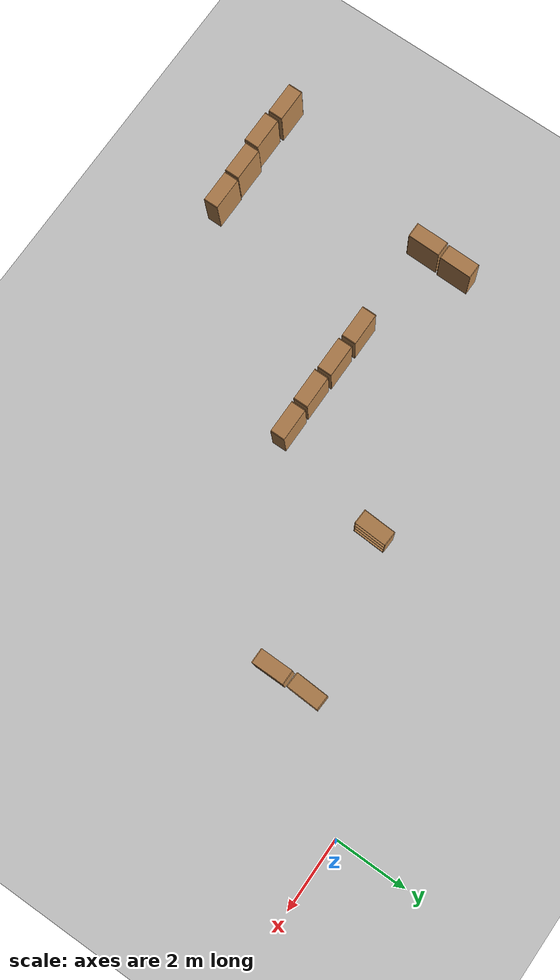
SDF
<sdf version="1.6">
 <world name="default">
  <model name="ground_plane">
   <static>1</static>
   <link name="link">
    <collision name="collision">
     <geometry><plane><normal>0 0 1</normal><size>100 100</size></plane></geometry>
     <surface>
      <contact><collide_bitmask>65535</collide_bitmask></contact>
      <friction><ode><mu>100</mu><mu2>50</mu2></ode></friction>
     </surface>
    </collision>
    <visual name="visual">
     <cast_shadows>0</cast_shadows>
     <geometry><plane><normal>0 0 1</normal><size>100 100</size></plane></geometry>
     <material>
      <script><uri>file://media/materials/scripts/gazebo.material</uri><name>Gazebo/Grey</name></script>
     </material>
    </visual>
   </link>
  </model>
  <model name="bookshelf_clone_0_clone_clone">
   <static>1</static>
   <link name="link">
    <inertial><mass>1</mass></inertial>
    <collision name="back">
     <pose>0 0.005 0.6 0 -0 0</pose>
     <geometry><box><size>0.9 0.01 1.2</size></box></geometry>
    </collision>
    <visual name="visual1">
     <pose>0 0.005 0.6 0 -0 0</pose>
     <geometry><box><size>0.9 0.01 1.2</size></box></geometry>
     <material>
      <script><uri>file://media/materials/scripts/gazebo.material</uri><name>Gazebo/Wood</name></script>
     </material>
    </visual>
    <collision name="left_side">
     <pose>0.45 -0.195 0.6 0 -0 0</pose>
     <geometry><box><size>0.02 0.4 1.2</size></box></geometry>
    </collision>
    <visual name="visual2">
     <pose>0.45 -0.195 0.6 0 -0 0</pose>
     <geometry><box><size>0.02 0.4 1.2</size></box></geometry>
     <material>
      <script><uri>file://media/materials/scripts/gazebo.material</uri><name>Gazebo/Wood</name></script>
     </material>
    </visual>
    <collision name="right_side">
     <pose>-0.45 -0.195 0.6 0 -0 0</pose>
     <geometry><box><size>0.02 0.4 1.2</size></box></geometry>
    </collision>
    <visual name="visual3">
     <pose>-0.45 -0.195 0.6 0 -0 0</pose>
     <geometry><box><size>0.02 0.4 1.2</size></box></geometry>
     <material>
      <script><uri>file://media/materials/scripts/gazebo.material</uri><name>Gazebo/Wood</name></script>
     </material>
    </visual>
    <collision name="bottom">
     <pose>0 -0.195 0.03 0 -0 0</pose>
     <geometry><box><size>0.88 0.4 0.06</size></box></geometry>
    </collision>
    <visual name="visual4">
     <pose>0 -0.195 0.03 0 -0 0</pose>
     <geometry><box><size>0.88 0.4 0.06</size></box></geometry>
     <material>
      <script><uri>file://media/materials/scripts/gazebo.material</uri><name>Gazebo/Wood</name></script>
     </material>
    </visual>
    <collision name="top">
     <pose>0 -0.195 1.19 0 -0 0</pose>
     <geometry><box><size>0.88 0.4 0.02</size></box></geometry>
    </collision>
    <visual name="visual5">
     <pose>0 -0.195 1.19 0 -0 0</pose>
     <geometry><box><size>0.88 0.4 0.02</size></box></geometry>
     <material>
      <script><uri>file://media/materials/scripts/gazebo.material</uri><name>Gazebo/Wood</name></script>
     </material>
    </visual>
    <collision name="low_shelf">
     <pose>0 -0.195 0.43 0 -0 0</pose>
     <geometry><box><size>0.88 0.4 0.02</size></box></geometry>
    </collision>
    <visual name="visual6">
     <pose>0 -0.195 0.43 0 -0 0</pose>
     <geometry><box><size>0.88 0.4 0.02</size></box></geometry>
     <material>
      <script><uri>file://media/materials/scripts/gazebo.material</uri><name>Gazebo/Wood</name></script>
     </material>
    </visual>
    <collision name="high_shelf">
     <pose>0 -0.195 0.8 0 -0 0</pose>
     <geometry><box><size>0.88 0.4 0.02</size></box></geometry>
    </collision>
    <visual name="visual7">
     <pose>0 -0.195 0.8 0 -0 0</pose>
     <geometry><box><size>0.88 0.4 0.02</size></box></geometry>
     <material>
      <script><uri>file://media/materials/scripts/gazebo.material</uri><name>Gazebo/Wood</name></script>
     </material>
    </visual>
   </link>
   <pose>-13.1951 -6.44439 0 0 0 -1.58271</pose>
  </model>
  <model name="bookshelf_clone_0_clone_clone_0">
   <static>1</static>
   <link name="link">
    <inertial><mass>1</mass></inertial>
    <collision name="back">
     <pose>0 0.005 0.6 0 -0 0</pose>
     <geometry><box><size>0.9 0.01 1.2</size></box></geometry>
    </collision>
    <visual name="visual1">
     <pose>0 0.005 0.6 0 -0 0</pose>
     <geometry><box><size>0.9 0.01 1.2</size></box></geometry>
     <material>
      <script><uri>file://media/materials/scripts/gazebo.material</uri><name>Gazebo/Wood</name></script>
     </material>
    </visual>
    <collision name="left_side">
     <pose>0.45 -0.195 0.6 0 -0 0</pose>
     <geometry><box><size>0.02 0.4 1.2</size></box></geometry>
    </collision>
    <visual name="visual2">
     <pose>0.45 -0.195 0.6 0 -0 0</pose>
     <geometry><box><size>0.02 0.4 1.2</size></box></geometry>
     <material>
      <script><uri>file://media/materials/scripts/gazebo.material</uri><name>Gazebo/Wood</name></script>
     </material>
    </visual>
    <collision name="right_side">
     <pose>-0.45 -0.195 0.6 0 -0 0</pose>
     <geometry><box><size>0.02 0.4 1.2</size></box></geometry>
    </collision>
    <visual name="visual3">
     <pose>-0.45 -0.195 0.6 0 -0 0</pose>
     <geometry><box><size>0.02 0.4 1.2</size></box></geometry>
     <material>
      <script><uri>file://media/materials/scripts/gazebo.material</uri><name>Gazebo/Wood</name></script>
     </material>
    </visual>
    <collision name="bottom">
     <pose>0 -0.195 0.03 0 -0 0</pose>
     <geometry><box><size>0.88 0.4 0.06</size></box></geometry>
    </collision>
    <visual name="visual4">
     <pose>0 -0.195 0.03 0 -0 0</pose>
     <geometry><box><size>0.88 0.4 0.06</size></box></geometry>
     <material>
      <script><uri>file://media/materials/scripts/gazebo.material</uri><name>Gazebo/Wood</name></script>
     </material>
    </visual>
    <collision name="top">
     <pose>0 -0.195 1.19 0 -0 0</pose>
     <geometry><box><size>0.88 0.4 0.02</size></box></geometry>
    </collision>
    <visual name="visual5">
     <pose>0 -0.195 1.19 0 -0 0</pose>
     <geometry><box><size>0.88 0.4 0.02</size></box></geometry>
     <material>
      <script><uri>file://media/materials/scripts/gazebo.material</uri><name>Gazebo/Wood</name></script>
     </material>
    </visual>
    <collision name="low_shelf">
     <pose>0 -0.195 0.43 0 -0 0</pose>
     <geometry><box><size>0.88 0.4 0.02</size></box></geometry>
    </collision>
    <visual name="visual6">
     <pose>0 -0.195 0.43 0 -0 0</pose>
     <geometry><box><size>0.88 0.4 0.02</size></box></geometry>
     <material>
      <script><uri>file://media/materials/scripts/gazebo.material</uri><name>Gazebo/Wood</name></script>
     </material>
    </visual>
    <collision name="high_shelf">
     <pose>0 -0.195 0.8 0 -0 0</pose>
     <geometry><box><size>0.88 0.4 0.02</size></box></geometry>
    </collision>
    <visual name="visual7">
     <pose>0 -0.195 0.8 0 -0 0</pose>
     <geometry><box><size>0.88 0.4 0.02</size></box></geometry>
     <material>
      <script><uri>file://media/materials/scripts/gazebo.material</uri><name>Gazebo/Wood</name></script>
     </material>
    </visual>
   </link>
   <pose>-13.1543 -5.46982 0 0 0 -1.58271</pose>
  </model>
  <model name="bookshelf_clone_clone_clone_0_clone_0_clone">
   <static>1</static>
   <link name="link">
    <inertial><mass>1</mass></inertial>
    <collision name="back">
     <pose>0 0.005 0.6 0 -0 0</pose>
     <geometry><box><size>0.9 0.01 1.2</size></box></geometry>
    </collision>
    <visual name="visual1">
     <pose>0 0.005 0.6 0 -0 0</pose>
     <geometry><box><size>0.9 0.01 1.2</size></box></geometry>
     <material>
      <script><uri>file://media/materials/scripts/gazebo.material</uri><name>Gazebo/Wood</name></script>
     </material>
    </visual>
    <collision name="left_side">
     <pose>0.45 -0.195 0.6 0 -0 0</pose>
     <geometry><box><size>0.02 0.4 1.2</size></box></geometry>
    </collision>
    <visual name="visual2">
     <pose>0.45 -0.195 0.6 0 -0 0</pose>
     <geometry><box><size>0.02 0.4 1.2</size></box></geometry>
     <material>
      <script><uri>file://media/materials/scripts/gazebo.material</uri><name>Gazebo/Wood</name></script>
     </material>
    </visual>
    <collision name="right_side">
     <pose>-0.45 -0.195 0.6 0 -0 0</pose>
     <geometry><box><size>0.02 0.4 1.2</size></box></geometry>
    </collision>
    <visual name="visual3">
     <pose>-0.45 -0.195 0.6 0 -0 0</pose>
     <geometry><box><size>0.02 0.4 1.2</size></box></geometry>
     <material>
      <script><uri>file://media/materials/scripts/gazebo.material</uri><name>Gazebo/Wood</name></script>
     </material>
    </visual>
    <collision name="bottom">
     <pose>0 -0.195 0.03 0 -0 0</pose>
     <geometry><box><size>0.88 0.4 0.06</size></box></geometry>
    </collision>
    <visual name="visual4">
     <pose>0 -0.195 0.03 0 -0 0</pose>
     <geometry><box><size>0.88 0.4 0.06</size></box></geometry>
     <material>
      <script><uri>file://media/materials/scripts/gazebo.material</uri><name>Gazebo/Wood</name></script>
     </material>
    </visual>
    <collision name="top">
     <pose>0 -0.195 1.19 0 -0 0</pose>
     <geometry><box><size>0.88 0.4 0.02</size></box></geometry>
    </collision>
    <visual name="visual5">
     <pose>0 -0.195 1.19 0 -0 0</pose>
     <geometry><box><size>0.88 0.4 0.02</size></box></geometry>
     <material>
      <script><uri>file://media/materials/scripts/gazebo.material</uri><name>Gazebo/Wood</name></script>
     </material>
    </visual>
    <collision name="low_shelf">
     <pose>0 -0.195 0.43 0 -0 0</pose>
     <geometry><box><size>0.88 0.4 0.02</size></box></geometry>
    </collision>
    <visual name="visual6">
     <pose>0 -0.195 0.43 0 -0 0</pose>
     <geometry><box><size>0.88 0.4 0.02</size></box></geometry>
     <material>
      <script><uri>file://media/materials/scripts/gazebo.material</uri><name>Gazebo/Wood</name></script>
     </material>
    </visual>
    <collision name="high_shelf">
     <pose>0 -0.195 0.8 0 -0 0</pose>
     <geometry><box><size>0.88 0.4 0.02</size></box></geometry>
    </collision>
    <visual name="visual7">
     <pose>0 -0.195 0.8 0 -0 0</pose>
     <geometry><box><size>0.88 0.4 0.02</size></box></geometry>
     <material>
      <script><uri>file://media/materials/scripts/gazebo.material</uri><name>Gazebo/Wood</name></script>
     </material>
    </visual>
   </link>
   <pose>-10.533 -6.39963 0 0 -0 0</pose>
  </model>
  <model name="bookshelf_clone_clone_clone_0_clone_0_clone_0">
   <static>1</static>
   <link name="link">
    <inertial><mass>1</mass></inertial>
    <collision name="back">
     <pose>0 0.005 0.6 0 -0 0</pose>
     <geometry><box><size>0.9 0.01 1.2</size></box></geometry>
    </collision>
    <visual name="visual1">
     <pose>0 0.005 0.6 0 -0 0</pose>
     <geometry><box><size>0.9 0.01 1.2</size></box></geometry>
     <material>
      <script><uri>file://media/materials/scripts/gazebo.material</uri><name>Gazebo/Wood</name></script>
     </material>
    </visual>
    <collision name="left_side">
     <pose>0.45 -0.195 0.6 0 -0 0</pose>
     <geometry><box><size>0.02 0.4 1.2</size></box></geometry>
    </collision>
    <visual name="visual2">
     <pose>0.45 -0.195 0.6 0 -0 0</pose>
     <geometry><box><size>0.02 0.4 1.2</size></box></geometry>
     <material>
      <script><uri>file://media/materials/scripts/gazebo.material</uri><name>Gazebo/Wood</name></script>
     </material>
    </visual>
    <collision name="right_side">
     <pose>-0.45 -0.195 0.6 0 -0 0</pose>
     <geometry><box><size>0.02 0.4 1.2</size></box></geometry>
    </collision>
    <visual name="visual3">
     <pose>-0.45 -0.195 0.6 0 -0 0</pose>
     <geometry><box><size>0.02 0.4 1.2</size></box></geometry>
     <material>
      <script><uri>file://media/materials/scripts/gazebo.material</uri><name>Gazebo/Wood</name></script>
     </material>
    </visual>
    <collision name="bottom">
     <pose>0 -0.195 0.03 0 -0 0</pose>
     <geometry><box><size>0.88 0.4 0.06</size></box></geometry>
    </collision>
    <visual name="visual4">
     <pose>0 -0.195 0.03 0 -0 0</pose>
     <geometry><box><size>0.88 0.4 0.06</size></box></geometry>
     <material>
      <script><uri>file://media/materials/scripts/gazebo.material</uri><name>Gazebo/Wood</name></script>
     </material>
    </visual>
    <collision name="top">
     <pose>0 -0.195 1.19 0 -0 0</pose>
     <geometry><box><size>0.88 0.4 0.02</size></box></geometry>
    </collision>
    <visual name="visual5">
     <pose>0 -0.195 1.19 0 -0 0</pose>
     <geometry><box><size>0.88 0.4 0.02</size></box></geometry>
     <material>
      <script><uri>file://media/materials/scripts/gazebo.material</uri><name>Gazebo/Wood</name></script>
     </material>
    </visual>
    <collision name="low_shelf">
     <pose>0 -0.195 0.43 0 -0 0</pose>
     <geometry><box><size>0.88 0.4 0.02</size></box></geometry>
    </collision>
    <visual name="visual6">
     <pose>0 -0.195 0.43 0 -0 0</pose>
     <geometry><box><size>0.88 0.4 0.02</size></box></geometry>
     <material>
      <script><uri>file://media/materials/scripts/gazebo.material</uri><name>Gazebo/Wood</name></script>
     </material>
    </visual>
    <collision name="high_shelf">
     <pose>0 -0.195 0.8 0 -0 0</pose>
     <geometry><box><size>0.88 0.4 0.02</size></box></geometry>
    </collision>
    <visual name="visual7">
     <pose>0 -0.195 0.8 0 -0 0</pose>
     <geometry><box><size>0.88 0.4 0.02</size></box></geometry>
     <material>
      <script><uri>file://media/materials/scripts/gazebo.material</uri><name>Gazebo/Wood</name></script>
     </material>
    </visual>
   </link>
   <pose>-9.52322 -6.42701 0 0 -0 0</pose>
  </model>
  <model name="bookshelf_clone_clone_clone_0_clone_0_clone_1">
   <static>1</static>
   <link name="link">
    <inertial><mass>1</mass></inertial>
    <collision name="back">
     <pose>0 0.005 0.6 0 -0 0</pose>
     <geometry><box><size>0.9 0.01 1.2</size></box></geometry>
    </collision>
    <visual name="visual1">
     <pose>0 0.005 0.6 0 -0 0</pose>
     <geometry><box><size>0.9 0.01 1.2</size></box></geometry>
     <material>
      <script><uri>file://media/materials/scripts/gazebo.material</uri><name>Gazebo/Wood</name></script>
     </material>
    </visual>
    <collision name="left_side">
     <pose>0.45 -0.195 0.6 0 -0 0</pose>
     <geometry><box><size>0.02 0.4 1.2</size></box></geometry>
    </collision>
    <visual name="visual2">
     <pose>0.45 -0.195 0.6 0 -0 0</pose>
     <geometry><box><size>0.02 0.4 1.2</size></box></geometry>
     <material>
      <script><uri>file://media/materials/scripts/gazebo.material</uri><name>Gazebo/Wood</name></script>
     </material>
    </visual>
    <collision name="right_side">
     <pose>-0.45 -0.195 0.6 0 -0 0</pose>
     <geometry><box><size>0.02 0.4 1.2</size></box></geometry>
    </collision>
    <visual name="visual3">
     <pose>-0.45 -0.195 0.6 0 -0 0</pose>
     <geometry><box><size>0.02 0.4 1.2</size></box></geometry>
     <material>
      <script><uri>file://media/materials/scripts/gazebo.material</uri><name>Gazebo/Wood</name></script>
     </material>
    </visual>
    <collision name="bottom">
     <pose>0 -0.195 0.03 0 -0 0</pose>
     <geometry><box><size>0.88 0.4 0.06</size></box></geometry>
    </collision>
    <visual name="visual4">
     <pose>0 -0.195 0.03 0 -0 0</pose>
     <geometry><box><size>0.88 0.4 0.06</size></box></geometry>
     <material>
      <script><uri>file://media/materials/scripts/gazebo.material</uri><name>Gazebo/Wood</name></script>
     </material>
    </visual>
    <collision name="top">
     <pose>0 -0.195 1.19 0 -0 0</pose>
     <geometry><box><size>0.88 0.4 0.02</size></box></geometry>
    </collision>
    <visual name="visual5">
     <pose>0 -0.195 1.19 0 -0 0</pose>
     <geometry><box><size>0.88 0.4 0.02</size></box></geometry>
     <material>
      <script><uri>file://media/materials/scripts/gazebo.material</uri><name>Gazebo/Wood</name></script>
     </material>
    </visual>
    <collision name="low_shelf">
     <pose>0 -0.195 0.43 0 -0 0</pose>
     <geometry><box><size>0.88 0.4 0.02</size></box></geometry>
    </collision>
    <visual name="visual6">
     <pose>0 -0.195 0.43 0 -0 0</pose>
     <geometry><box><size>0.88 0.4 0.02</size></box></geometry>
     <material>
      <script><uri>file://media/materials/scripts/gazebo.material</uri><name>Gazebo/Wood</name></script>
     </material>
    </visual>
    <collision name="high_shelf">
     <pose>0 -0.195 0.8 0 -0 0</pose>
     <geometry><box><size>0.88 0.4 0.02</size></box></geometry>
    </collision>
    <visual name="visual7">
     <pose>0 -0.195 0.8 0 -0 0</pose>
     <geometry><box><size>0.88 0.4 0.02</size></box></geometry>
     <material>
      <script><uri>file://media/materials/scripts/gazebo.material</uri><name>Gazebo/Wood</name></script>
     </material>
    </visual>
   </link>
   <pose>-8.53102 -6.45354 0 0 -0 0</pose>
  </model>
  <model name="bookshelf_clone_clone_clone_0_clone_0_clone_2">
   <static>1</static>
   <link name="link">
    <inertial><mass>1</mass></inertial>
    <collision name="back">
     <pose>0 0.005 0.6 0 -0 0</pose>
     <geometry><box><size>0.9 0.01 1.2</size></box></geometry>
    </collision>
    <visual name="visual1">
     <pose>0 0.005 0.6 0 -0 0</pose>
     <geometry><box><size>0.9 0.01 1.2</size></box></geometry>
     <material>
      <script><uri>file://media/materials/scripts/gazebo.material</uri><name>Gazebo/Wood</name></script>
     </material>
    </visual>
    <collision name="left_side">
     <pose>0.45 -0.195 0.6 0 -0 0</pose>
     <geometry><box><size>0.02 0.4 1.2</size></box></geometry>
    </collision>
    <visual name="visual2">
     <pose>0.45 -0.195 0.6 0 -0 0</pose>
     <geometry><box><size>0.02 0.4 1.2</size></box></geometry>
     <material>
      <script><uri>file://media/materials/scripts/gazebo.material</uri><name>Gazebo/Wood</name></script>
     </material>
    </visual>
    <collision name="right_side">
     <pose>-0.45 -0.195 0.6 0 -0 0</pose>
     <geometry><box><size>0.02 0.4 1.2</size></box></geometry>
    </collision>
    <visual name="visual3">
     <pose>-0.45 -0.195 0.6 0 -0 0</pose>
     <geometry><box><size>0.02 0.4 1.2</size></box></geometry>
     <material>
      <script><uri>file://media/materials/scripts/gazebo.material</uri><name>Gazebo/Wood</name></script>
     </material>
    </visual>
    <collision name="bottom">
     <pose>0 -0.195 0.03 0 -0 0</pose>
     <geometry><box><size>0.88 0.4 0.06</size></box></geometry>
    </collision>
    <visual name="visual4">
     <pose>0 -0.195 0.03 0 -0 0</pose>
     <geometry><box><size>0.88 0.4 0.06</size></box></geometry>
     <material>
      <script><uri>file://media/materials/scripts/gazebo.material</uri><name>Gazebo/Wood</name></script>
     </material>
    </visual>
    <collision name="top">
     <pose>0 -0.195 1.19 0 -0 0</pose>
     <geometry><box><size>0.88 0.4 0.02</size></box></geometry>
    </collision>
    <visual name="visual5">
     <pose>0 -0.195 1.19 0 -0 0</pose>
     <geometry><box><size>0.88 0.4 0.02</size></box></geometry>
     <material>
      <script><uri>file://media/materials/scripts/gazebo.material</uri><name>Gazebo/Wood</name></script>
     </material>
    </visual>
    <collision name="low_shelf">
     <pose>0 -0.195 0.43 0 -0 0</pose>
     <geometry><box><size>0.88 0.4 0.02</size></box></geometry>
    </collision>
    <visual name="visual6">
     <pose>0 -0.195 0.43 0 -0 0</pose>
     <geometry><box><size>0.88 0.4 0.02</size></box></geometry>
     <material>
      <script><uri>file://media/materials/scripts/gazebo.material</uri><name>Gazebo/Wood</name></script>
     </material>
    </visual>
    <collision name="high_shelf">
     <pose>0 -0.195 0.8 0 -0 0</pose>
     <geometry><box><size>0.88 0.4 0.02</size></box></geometry>
    </collision>
    <visual name="visual7">
     <pose>0 -0.195 0.8 0 -0 0</pose>
     <geometry><box><size>0.88 0.4 0.02</size></box></geometry>
     <material>
      <script><uri>file://media/materials/scripts/gazebo.material</uri><name>Gazebo/Wood</name></script>
     </material>
    </visual>
   </link>
   <pose>-7.53666 -6.44553 0 0 -0 0</pose>
  </model>
  <model name="bookshelf_clone_0_clone_clone_4_clone">
   <static>1</static>
   <link name="link">
    <inertial><mass>1</mass></inertial>
    <collision name="back">
     <pose>0 0.005 0.6 0 -0 0</pose>
     <geometry><box><size>0.9 0.01 1.2</size></box></geometry>
    </collision>
    <visual name="visual1">
     <pose>0 0.005 0.6 0 -0 0</pose>
     <geometry><box><size>0.9 0.01 1.2</size></box></geometry>
     <material>
      <script><uri>file://media/materials/scripts/gazebo.material</uri><name>Gazebo/Wood</name></script>
     </material>
    </visual>
    <collision name="left_side">
     <pose>0.45 -0.195 0.6 0 -0 0</pose>
     <geometry><box><size>0.02 0.4 1.2</size></box></geometry>
    </collision>
    <visual name="visual2">
     <pose>0.45 -0.195 0.6 0 -0 0</pose>
     <geometry><box><size>0.02 0.4 1.2</size></box></geometry>
     <material>
      <script><uri>file://media/materials/scripts/gazebo.material</uri><name>Gazebo/Wood</name></script>
     </material>
    </visual>
    <collision name="right_side">
     <pose>-0.45 -0.195 0.6 0 -0 0</pose>
     <geometry><box><size>0.02 0.4 1.2</size></box></geometry>
    </collision>
    <visual name="visual3">
     <pose>-0.45 -0.195 0.6 0 -0 0</pose>
     <geometry><box><size>0.02 0.4 1.2</size></box></geometry>
     <material>
      <script><uri>file://media/materials/scripts/gazebo.material</uri><name>Gazebo/Wood</name></script>
     </material>
    </visual>
    <collision name="bottom">
     <pose>0 -0.195 0.03 0 -0 0</pose>
     <geometry><box><size>0.88 0.4 0.06</size></box></geometry>
    </collision>
    <visual name="visual4">
     <pose>0 -0.195 0.03 0 -0 0</pose>
     <geometry><box><size>0.88 0.4 0.06</size></box></geometry>
     <material>
      <script><uri>file://media/materials/scripts/gazebo.material</uri><name>Gazebo/Wood</name></script>
     </material>
    </visual>
    <collision name="top">
     <pose>0 -0.195 1.19 0 -0 0</pose>
     <geometry><box><size>0.88 0.4 0.02</size></box></geometry>
    </collision>
    <visual name="visual5">
     <pose>0 -0.195 1.19 0 -0 0</pose>
     <geometry><box><size>0.88 0.4 0.02</size></box></geometry>
     <material>
      <script><uri>file://media/materials/scripts/gazebo.material</uri><name>Gazebo/Wood</name></script>
     </material>
    </visual>
    <collision name="low_shelf">
     <pose>0 -0.195 0.43 0 -0 0</pose>
     <geometry><box><size>0.88 0.4 0.02</size></box></geometry>
    </collision>
    <visual name="visual6">
     <pose>0 -0.195 0.43 0 -0 0</pose>
     <geometry><box><size>0.88 0.4 0.02</size></box></geometry>
     <material>
      <script><uri>file://media/materials/scripts/gazebo.material</uri><name>Gazebo/Wood</name></script>
     </material>
    </visual>
    <collision name="high_shelf">
     <pose>0 -0.195 0.8 0 -0 0</pose>
     <geometry><box><size>0.88 0.4 0.02</size></box></geometry>
    </collision>
    <visual name="visual7">
     <pose>0 -0.195 0.8 0 -0 0</pose>
     <geometry><box><size>0.88 0.4 0.02</size></box></geometry>
     <material>
      <script><uri>file://media/materials/scripts/gazebo.material</uri><name>Gazebo/Wood</name></script>
     </material>
    </visual>
   </link>
   <pose>-2.63698 -2.51216 0 -0.000638 0.016748 1.52081</pose>
  </model>
  <model name="bookshelf_clone_0_clone_clone_3_clone">
   <static>1</static>
   <link name="link">
    <inertial><mass>1</mass></inertial>
    <collision name="back">
     <pose>0 0.005 0.6 0 -0 0</pose>
     <geometry><box><size>0.9 0.01 1.2</size></box></geometry>
    </collision>
    <visual name="visual1">
     <pose>0 0.005 0.6 0 -0 0</pose>
     <geometry><box><size>0.9 0.01 1.2</size></box></geometry>
     <material>
      <script><uri>file://media/materials/scripts/gazebo.material</uri><name>Gazebo/Wood</name></script>
     </material>
    </visual>
    <collision name="left_side">
     <pose>0.45 -0.195 0.6 0 -0 0</pose>
     <geometry><box><size>0.02 0.4 1.2</size></box></geometry>
    </collision>
    <visual name="visual2">
     <pose>0.45 -0.195 0.6 0 -0 0</pose>
     <geometry><box><size>0.02 0.4 1.2</size></box></geometry>
     <material>
      <script><uri>file://media/materials/scripts/gazebo.material</uri><name>Gazebo/Wood</name></script>
     </material>
    </visual>
    <collision name="right_side">
     <pose>-0.45 -0.195 0.6 0 -0 0</pose>
     <geometry><box><size>0.02 0.4 1.2</size></box></geometry>
    </collision>
    <visual name="visual3">
     <pose>-0.45 -0.195 0.6 0 -0 0</pose>
     <geometry><box><size>0.02 0.4 1.2</size></box></geometry>
     <material>
      <script><uri>file://media/materials/scripts/gazebo.material</uri><name>Gazebo/Wood</name></script>
     </material>
    </visual>
    <collision name="bottom">
     <pose>0 -0.195 0.03 0 -0 0</pose>
     <geometry><box><size>0.88 0.4 0.06</size></box></geometry>
    </collision>
    <visual name="visual4">
     <pose>0 -0.195 0.03 0 -0 0</pose>
     <geometry><box><size>0.88 0.4 0.06</size></box></geometry>
     <material>
      <script><uri>file://media/materials/scripts/gazebo.material</uri><name>Gazebo/Wood</name></script>
     </material>
    </visual>
    <collision name="top">
     <pose>0 -0.195 1.19 0 -0 0</pose>
     <geometry><box><size>0.88 0.4 0.02</size></box></geometry>
    </collision>
    <visual name="visual5">
     <pose>0 -0.195 1.19 0 -0 0</pose>
     <geometry><box><size>0.88 0.4 0.02</size></box></geometry>
     <material>
      <script><uri>file://media/materials/scripts/gazebo.material</uri><name>Gazebo/Wood</name></script>
     </material>
    </visual>
    <collision name="low_shelf">
     <pose>0 -0.195 0.43 0 -0 0</pose>
     <geometry><box><size>0.88 0.4 0.02</size></box></geometry>
    </collision>
    <visual name="visual6">
     <pose>0 -0.195 0.43 0 -0 0</pose>
     <geometry><box><size>0.88 0.4 0.02</size></box></geometry>
     <material>
      <script><uri>file://media/materials/scripts/gazebo.material</uri><name>Gazebo/Wood</name></script>
     </material>
    </visual>
    <collision name="high_shelf">
     <pose>0 -0.195 0.8 0 -0 0</pose>
     <geometry><box><size>0.88 0.4 0.02</size></box></geometry>
    </collision>
    <visual name="visual7">
     <pose>0 -0.195 0.8 0 -0 0</pose>
     <geometry><box><size>0.88 0.4 0.02</size></box></geometry>
     <material>
      <script><uri>file://media/materials/scripts/gazebo.material</uri><name>Gazebo/Wood</name></script>
     </material>
    </visual>
   </link>
   <pose>-2.24715 -3.51263 0 0 0 -1.58271</pose>
  </model>
  <model name="bookshelf_clone_clone_clone_0_clone_0_clone_clone">
   <static>1</static>
   <link name="link">
    <inertial><mass>1</mass></inertial>
    <collision name="back">
     <pose>0 0.005 0.6 0 -0 0</pose>
     <geometry><box><size>0.9 0.01 1.2</size></box></geometry>
    </collision>
    <visual name="visual1">
     <pose>0 0.005 0.6 0 -0 0</pose>
     <geometry><box><size>0.9 0.01 1.2</size></box></geometry>
     <material>
      <script><uri>file://media/materials/scripts/gazebo.material</uri><name>Gazebo/Wood</name></script>
     </material>
    </visual>
    <collision name="left_side">
     <pose>0.45 -0.195 0.6 0 -0 0</pose>
     <geometry><box><size>0.02 0.4 1.2</size></box></geometry>
    </collision>
    <visual name="visual2">
     <pose>0.45 -0.195 0.6 0 -0 0</pose>
     <geometry><box><size>0.02 0.4 1.2</size></box></geometry>
     <material>
      <script><uri>file://media/materials/scripts/gazebo.material</uri><name>Gazebo/Wood</name></script>
     </material>
    </visual>
    <collision name="right_side">
     <pose>-0.45 -0.195 0.6 0 -0 0</pose>
     <geometry><box><size>0.02 0.4 1.2</size></box></geometry>
    </collision>
    <visual name="visual3">
     <pose>-0.45 -0.195 0.6 0 -0 0</pose>
     <geometry><box><size>0.02 0.4 1.2</size></box></geometry>
     <material>
      <script><uri>file://media/materials/scripts/gazebo.material</uri><name>Gazebo/Wood</name></script>
     </material>
    </visual>
    <collision name="bottom">
     <pose>0 -0.195 0.03 0 -0 0</pose>
     <geometry><box><size>0.88 0.4 0.06</size></box></geometry>
    </collision>
    <visual name="visual4">
     <pose>0 -0.195 0.03 0 -0 0</pose>
     <geometry><box><size>0.88 0.4 0.06</size></box></geometry>
     <material>
      <script><uri>file://media/materials/scripts/gazebo.material</uri><name>Gazebo/Wood</name></script>
     </material>
    </visual>
    <collision name="top">
     <pose>0 -0.195 1.19 0 -0 0</pose>
     <geometry><box><size>0.88 0.4 0.02</size></box></geometry>
    </collision>
    <visual name="visual5">
     <pose>0 -0.195 1.19 0 -0 0</pose>
     <geometry><box><size>0.88 0.4 0.02</size></box></geometry>
     <material>
      <script><uri>file://media/materials/scripts/gazebo.material</uri><name>Gazebo/Wood</name></script>
     </material>
    </visual>
    <collision name="low_shelf">
     <pose>0 -0.195 0.43 0 -0 0</pose>
     <geometry><box><size>0.88 0.4 0.02</size></box></geometry>
    </collision>
    <visual name="visual6">
     <pose>0 -0.195 0.43 0 -0 0</pose>
     <geometry><box><size>0.88 0.4 0.02</size></box></geometry>
     <material>
      <script><uri>file://media/materials/scripts/gazebo.material</uri><name>Gazebo/Wood</name></script>
     </material>
    </visual>
    <collision name="high_shelf">
     <pose>0 -0.195 0.8 0 -0 0</pose>
     <geometry><box><size>0.88 0.4 0.02</size></box></geometry>
    </collision>
    <visual name="visual7">
     <pose>0 -0.195 0.8 0 -0 0</pose>
     <geometry><box><size>0.88 0.4 0.02</size></box></geometry>
     <material>
      <script><uri>file://media/materials/scripts/gazebo.material</uri><name>Gazebo/Wood</name></script>
     </material>
    </visual>
   </link>
   <pose>-14.4175 -11.3677 0 0 -0 0</pose>
  </model>
  <model name="bookshelf_clone_clone_clone_0_clone_0_clone_clone_0">
   <static>1</static>
   <link name="link">
    <inertial><mass>1</mass></inertial>
    <collision name="back">
     <pose>0 0.005 0.6 0 -0 0</pose>
     <geometry><box><size>0.9 0.01 1.2</size></box></geometry>
    </collision>
    <visual name="visual1">
     <pose>0 0.005 0.6 0 -0 0</pose>
     <geometry><box><size>0.9 0.01 1.2</size></box></geometry>
     <material>
      <script><uri>file://media/materials/scripts/gazebo.material</uri><name>Gazebo/Wood</name></script>
     </material>
    </visual>
    <collision name="left_side">
     <pose>0.45 -0.195 0.6 0 -0 0</pose>
     <geometry><box><size>0.02 0.4 1.2</size></box></geometry>
    </collision>
    <visual name="visual2">
     <pose>0.45 -0.195 0.6 0 -0 0</pose>
     <geometry><box><size>0.02 0.4 1.2</size></box></geometry>
     <material>
      <script><uri>file://media/materials/scripts/gazebo.material</uri><name>Gazebo/Wood</name></script>
     </material>
    </visual>
    <collision name="right_side">
     <pose>-0.45 -0.195 0.6 0 -0 0</pose>
     <geometry><box><size>0.02 0.4 1.2</size></box></geometry>
    </collision>
    <visual name="visual3">
     <pose>-0.45 -0.195 0.6 0 -0 0</pose>
     <geometry><box><size>0.02 0.4 1.2</size></box></geometry>
     <material>
      <script><uri>file://media/materials/scripts/gazebo.material</uri><name>Gazebo/Wood</name></script>
     </material>
    </visual>
    <collision name="bottom">
     <pose>0 -0.195 0.03 0 -0 0</pose>
     <geometry><box><size>0.88 0.4 0.06</size></box></geometry>
    </collision>
    <visual name="visual4">
     <pose>0 -0.195 0.03 0 -0 0</pose>
     <geometry><box><size>0.88 0.4 0.06</size></box></geometry>
     <material>
      <script><uri>file://media/materials/scripts/gazebo.material</uri><name>Gazebo/Wood</name></script>
     </material>
    </visual>
    <collision name="top">
     <pose>0 -0.195 1.19 0 -0 0</pose>
     <geometry><box><size>0.88 0.4 0.02</size></box></geometry>
    </collision>
    <visual name="visual5">
     <pose>0 -0.195 1.19 0 -0 0</pose>
     <geometry><box><size>0.88 0.4 0.02</size></box></geometry>
     <material>
      <script><uri>file://media/materials/scripts/gazebo.material</uri><name>Gazebo/Wood</name></script>
     </material>
    </visual>
    <collision name="low_shelf">
     <pose>0 -0.195 0.43 0 -0 0</pose>
     <geometry><box><size>0.88 0.4 0.02</size></box></geometry>
    </collision>
    <visual name="visual6">
     <pose>0 -0.195 0.43 0 -0 0</pose>
     <geometry><box><size>0.88 0.4 0.02</size></box></geometry>
     <material>
      <script><uri>file://media/materials/scripts/gazebo.material</uri><name>Gazebo/Wood</name></script>
     </material>
    </visual>
    <collision name="high_shelf">
     <pose>0 -0.195 0.8 0 -0 0</pose>
     <geometry><box><size>0.88 0.4 0.02</size></box></geometry>
    </collision>
    <visual name="visual7">
     <pose>0 -0.195 0.8 0 -0 0</pose>
     <geometry><box><size>0.88 0.4 0.02</size></box></geometry>
     <material>
      <script><uri>file://media/materials/scripts/gazebo.material</uri><name>Gazebo/Wood</name></script>
     </material>
    </visual>
   </link>
   <pose>-13.4215 -11.415 0 0 -0 0</pose>
  </model>
  <model name="bookshelf_clone_clone_clone_0_clone_0_clone_clone_1">
   <static>1</static>
   <link name="link">
    <inertial><mass>1</mass></inertial>
    <collision name="back">
     <pose>0 0.005 0.6 0 -0 0</pose>
     <geometry><box><size>0.9 0.01 1.2</size></box></geometry>
    </collision>
    <visual name="visual1">
     <pose>0 0.005 0.6 0 -0 0</pose>
     <geometry><box><size>0.9 0.01 1.2</size></box></geometry>
     <material>
      <script><uri>file://media/materials/scripts/gazebo.material</uri><name>Gazebo/Wood</name></script>
     </material>
    </visual>
    <collision name="left_side">
     <pose>0.45 -0.195 0.6 0 -0 0</pose>
     <geometry><box><size>0.02 0.4 1.2</size></box></geometry>
    </collision>
    <visual name="visual2">
     <pose>0.45 -0.195 0.6 0 -0 0</pose>
     <geometry><box><size>0.02 0.4 1.2</size></box></geometry>
     <material>
      <script><uri>file://media/materials/scripts/gazebo.material</uri><name>Gazebo/Wood</name></script>
     </material>
    </visual>
    <collision name="right_side">
     <pose>-0.45 -0.195 0.6 0 -0 0</pose>
     <geometry><box><size>0.02 0.4 1.2</size></box></geometry>
    </collision>
    <visual name="visual3">
     <pose>-0.45 -0.195 0.6 0 -0 0</pose>
     <geometry><box><size>0.02 0.4 1.2</size></box></geometry>
     <material>
      <script><uri>file://media/materials/scripts/gazebo.material</uri><name>Gazebo/Wood</name></script>
     </material>
    </visual>
    <collision name="bottom">
     <pose>0 -0.195 0.03 0 -0 0</pose>
     <geometry><box><size>0.88 0.4 0.06</size></box></geometry>
    </collision>
    <visual name="visual4">
     <pose>0 -0.195 0.03 0 -0 0</pose>
     <geometry><box><size>0.88 0.4 0.06</size></box></geometry>
     <material>
      <script><uri>file://media/materials/scripts/gazebo.material</uri><name>Gazebo/Wood</name></script>
     </material>
    </visual>
    <collision name="top">
     <pose>0 -0.195 1.19 0 -0 0</pose>
     <geometry><box><size>0.88 0.4 0.02</size></box></geometry>
    </collision>
    <visual name="visual5">
     <pose>0 -0.195 1.19 0 -0 0</pose>
     <geometry><box><size>0.88 0.4 0.02</size></box></geometry>
     <material>
      <script><uri>file://media/materials/scripts/gazebo.material</uri><name>Gazebo/Wood</name></script>
     </material>
    </visual>
    <collision name="low_shelf">
     <pose>0 -0.195 0.43 0 -0 0</pose>
     <geometry><box><size>0.88 0.4 0.02</size></box></geometry>
    </collision>
    <visual name="visual6">
     <pose>0 -0.195 0.43 0 -0 0</pose>
     <geometry><box><size>0.88 0.4 0.02</size></box></geometry>
     <material>
      <script><uri>file://media/materials/scripts/gazebo.material</uri><name>Gazebo/Wood</name></script>
     </material>
    </visual>
    <collision name="high_shelf">
     <pose>0 -0.195 0.8 0 -0 0</pose>
     <geometry><box><size>0.88 0.4 0.02</size></box></geometry>
    </collision>
    <visual name="visual7">
     <pose>0 -0.195 0.8 0 -0 0</pose>
     <geometry><box><size>0.88 0.4 0.02</size></box></geometry>
     <material>
      <script><uri>file://media/materials/scripts/gazebo.material</uri><name>Gazebo/Wood</name></script>
     </material>
    </visual>
   </link>
   <pose>-12.4591 -11.336 0 0 -0 0</pose>
  </model>
  <model name="bookshelf_clone_clone_clone_0_clone_0_clone_clone_2">
   <static>1</static>
   <link name="link">
    <inertial><mass>1</mass></inertial>
    <collision name="back">
     <pose>0 0.005 0.6 0 -0 0</pose>
     <geometry><box><size>0.9 0.01 1.2</size></box></geometry>
    </collision>
    <visual name="visual1">
     <pose>0 0.005 0.6 0 -0 0</pose>
     <geometry><box><size>0.9 0.01 1.2</size></box></geometry>
     <material>
      <script><uri>file://media/materials/scripts/gazebo.material</uri><name>Gazebo/Wood</name></script>
     </material>
    </visual>
    <collision name="left_side">
     <pose>0.45 -0.195 0.6 0 -0 0</pose>
     <geometry><box><size>0.02 0.4 1.2</size></box></geometry>
    </collision>
    <visual name="visual2">
     <pose>0.45 -0.195 0.6 0 -0 0</pose>
     <geometry><box><size>0.02 0.4 1.2</size></box></geometry>
     <material>
      <script><uri>file://media/materials/scripts/gazebo.material</uri><name>Gazebo/Wood</name></script>
     </material>
    </visual>
    <collision name="right_side">
     <pose>-0.45 -0.195 0.6 0 -0 0</pose>
     <geometry><box><size>0.02 0.4 1.2</size></box></geometry>
    </collision>
    <visual name="visual3">
     <pose>-0.45 -0.195 0.6 0 -0 0</pose>
     <geometry><box><size>0.02 0.4 1.2</size></box></geometry>
     <material>
      <script><uri>file://media/materials/scripts/gazebo.material</uri><name>Gazebo/Wood</name></script>
     </material>
    </visual>
    <collision name="bottom">
     <pose>0 -0.195 0.03 0 -0 0</pose>
     <geometry><box><size>0.88 0.4 0.06</size></box></geometry>
    </collision>
    <visual name="visual4">
     <pose>0 -0.195 0.03 0 -0 0</pose>
     <geometry><box><size>0.88 0.4 0.06</size></box></geometry>
     <material>
      <script><uri>file://media/materials/scripts/gazebo.material</uri><name>Gazebo/Wood</name></script>
     </material>
    </visual>
    <collision name="top">
     <pose>0 -0.195 1.19 0 -0 0</pose>
     <geometry><box><size>0.88 0.4 0.02</size></box></geometry>
    </collision>
    <visual name="visual5">
     <pose>0 -0.195 1.19 0 -0 0</pose>
     <geometry><box><size>0.88 0.4 0.02</size></box></geometry>
     <material>
      <script><uri>file://media/materials/scripts/gazebo.material</uri><name>Gazebo/Wood</name></script>
     </material>
    </visual>
    <collision name="low_shelf">
     <pose>0 -0.195 0.43 0 -0 0</pose>
     <geometry><box><size>0.88 0.4 0.02</size></box></geometry>
    </collision>
    <visual name="visual6">
     <pose>0 -0.195 0.43 0 -0 0</pose>
     <geometry><box><size>0.88 0.4 0.02</size></box></geometry>
     <material>
      <script><uri>file://media/materials/scripts/gazebo.material</uri><name>Gazebo/Wood</name></script>
     </material>
    </visual>
    <collision name="high_shelf">
     <pose>0 -0.195 0.8 0 -0 0</pose>
     <geometry><box><size>0.88 0.4 0.02</size></box></geometry>
    </collision>
    <visual name="visual7">
     <pose>0 -0.195 0.8 0 -0 0</pose>
     <geometry><box><size>0.88 0.4 0.02</size></box></geometry>
     <material>
      <script><uri>file://media/materials/scripts/gazebo.material</uri><name>Gazebo/Wood</name></script>
     </material>
    </visual>
   </link>
   <pose>-11.5065 -11.3123 0 0 -0 0</pose>
  </model>
  <model name="bookshelf_clone_0_clone_clone_4_clone_clone">
   <static>1</static>
   <link name="link">
    <inertial><mass>1</mass></inertial>
    <collision name="back">
     <pose>0 0.005 0.6 0 -0 0</pose>
     <geometry><box><size>0.9 0.01 1.2</size></box></geometry>
    </collision>
    <visual name="visual1">
     <pose>0 0.005 0.6 0 -0 0</pose>
     <geometry><box><size>0.9 0.01 1.2</size></box></geometry>
     <material>
      <script><uri>file://media/materials/scripts/gazebo.material</uri><name>Gazebo/Wood</name></script>
     </material>
    </visual>
    <collision name="left_side">
     <pose>0.45 -0.195 0.6 0 -0 0</pose>
     <geometry><box><size>0.02 0.4 1.2</size></box></geometry>
    </collision>
    <visual name="visual2">
     <pose>0.45 -0.195 0.6 0 -0 0</pose>
     <geometry><box><size>0.02 0.4 1.2</size></box></geometry>
     <material>
      <script><uri>file://media/materials/scripts/gazebo.material</uri><name>Gazebo/Wood</name></script>
     </material>
    </visual>
    <collision name="right_side">
     <pose>-0.45 -0.195 0.6 0 -0 0</pose>
     <geometry><box><size>0.02 0.4 1.2</size></box></geometry>
    </collision>
    <visual name="visual3">
     <pose>-0.45 -0.195 0.6 0 -0 0</pose>
     <geometry><box><size>0.02 0.4 1.2</size></box></geometry>
     <material>
      <script><uri>file://media/materials/scripts/gazebo.material</uri><name>Gazebo/Wood</name></script>
     </material>
    </visual>
    <collision name="bottom">
     <pose>0 -0.195 0.03 0 -0 0</pose>
     <geometry><box><size>0.88 0.4 0.06</size></box></geometry>
    </collision>
    <visual name="visual4">
     <pose>0 -0.195 0.03 0 -0 0</pose>
     <geometry><box><size>0.88 0.4 0.06</size></box></geometry>
     <material>
      <script><uri>file://media/materials/scripts/gazebo.material</uri><name>Gazebo/Wood</name></script>
     </material>
    </visual>
    <collision name="top">
     <pose>0 -0.195 1.19 0 -0 0</pose>
     <geometry><box><size>0.88 0.4 0.02</size></box></geometry>
    </collision>
    <visual name="visual5">
     <pose>0 -0.195 1.19 0 -0 0</pose>
     <geometry><box><size>0.88 0.4 0.02</size></box></geometry>
     <material>
      <script><uri>file://media/materials/scripts/gazebo.material</uri><name>Gazebo/Wood</name></script>
     </material>
    </visual>
    <collision name="low_shelf">
     <pose>0 -0.195 0.43 0 -0 0</pose>
     <geometry><box><size>0.88 0.4 0.02</size></box></geometry>
    </collision>
    <visual name="visual6">
     <pose>0 -0.195 0.43 0 -0 0</pose>
     <geometry><box><size>0.88 0.4 0.02</size></box></geometry>
     <material>
      <script><uri>file://media/materials/scripts/gazebo.material</uri><name>Gazebo/Wood</name></script>
     </material>
    </visual>
    <collision name="high_shelf">
     <pose>0 -0.195 0.8 0 -0 0</pose>
     <geometry><box><size>0.88 0.4 0.02</size></box></geometry>
    </collision>
    <visual name="visual7">
     <pose>0 -0.195 0.8 0 -0 0</pose>
     <geometry><box><size>0.88 0.4 0.02</size></box></geometry>
     <material>
      <script><uri>file://media/materials/scripts/gazebo.material</uri><name>Gazebo/Wood</name></script>
     </material>
    </visual>
   </link>
   <pose>-6.74921 -3.40179 0 -0.000638 0.016748 1.52081</pose>
  </model>
 </world>
</sdf>
